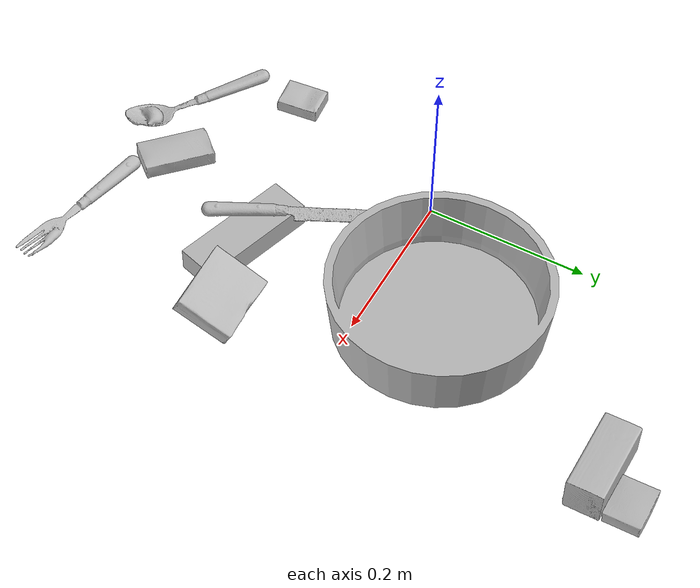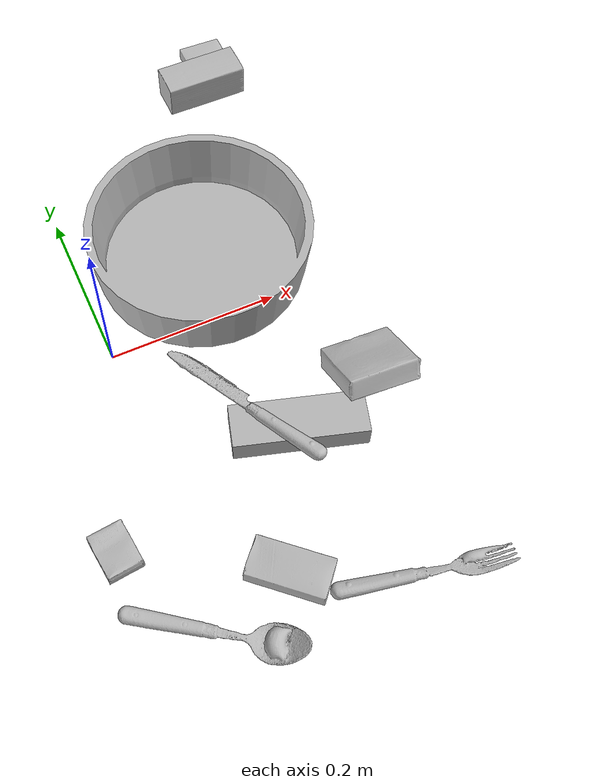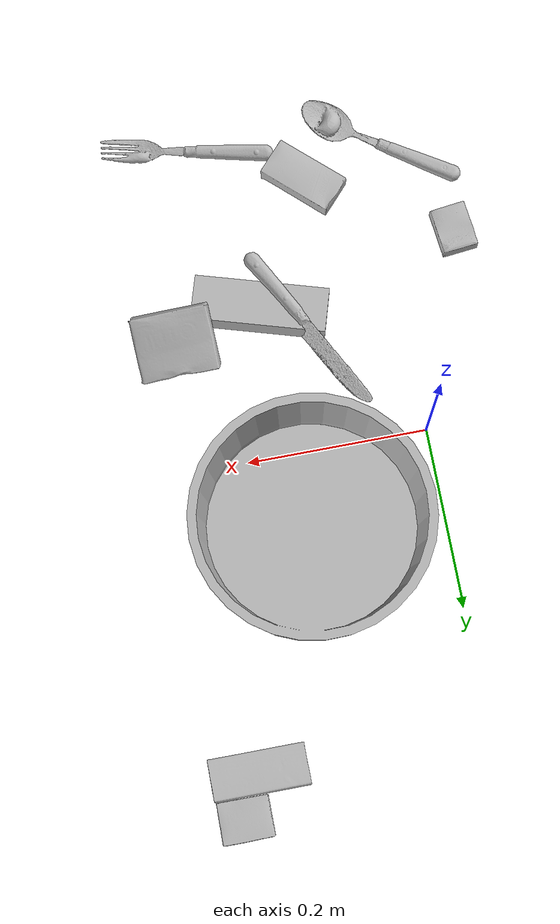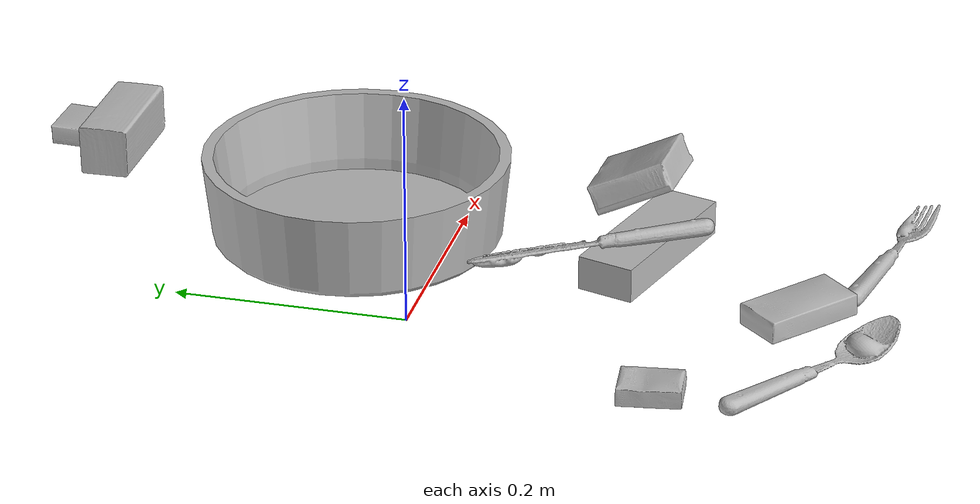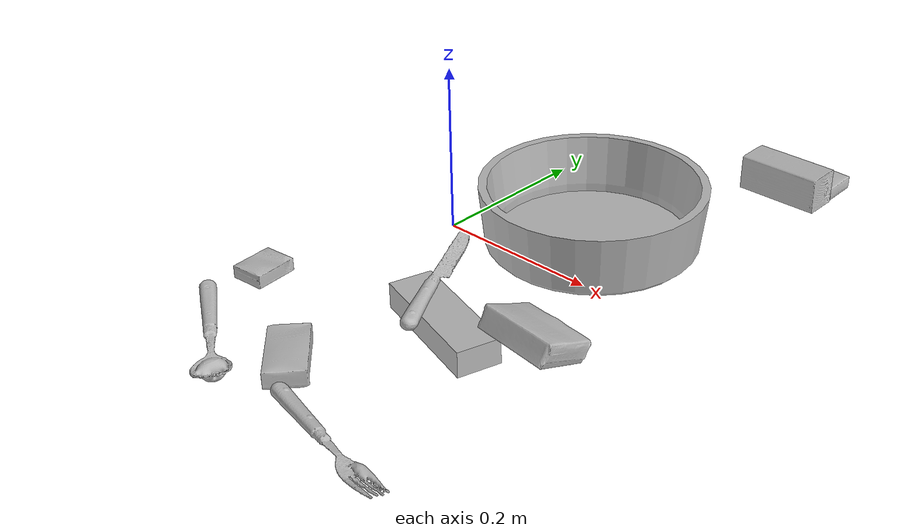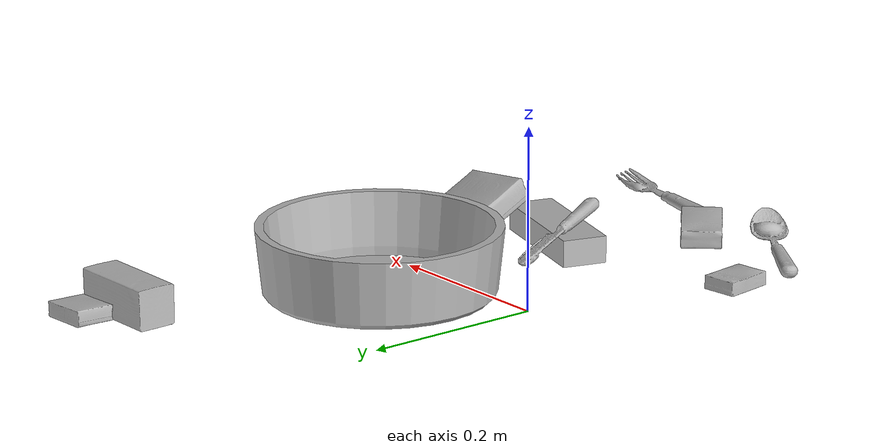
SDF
<sdf version="1.4">
  <world name="default">
    <light name="light1" type="point">
      <pose>0 0 1 0 0 0</pose>
      <diffuse>3 3 3 1</diffuse>
      <specular>3 3 3 1</specular>
    </light>
    <light name="light2" type="point">
      <pose>0 0.5 2 0 0 0</pose>
      <diffuse>1 1 1 1</diffuse>
      <specular>1 1 1 1</specular>
    </light>
    <light name="light3" type="point">
      <pose>0 0.5 2 0 0 0</pose>
      <diffuse>3 3 3 1</diffuse>
      <specular>3 3 3 1</specular>
    </light>
    <scene>
      <ambient>0.7 0.7 0.7</ambient>
    </scene>
    <model name="box11">
      <link name="link_box11">
        <collision name="default">
          <geometry>
            <mesh>
              <uri>model://jenga/collision_meshes/collision.obj</uri>
              <scale>1.0 1.0 1.0</scale>
            </mesh>
          </geometry>
          <surface>
            <friction>
              <ode>
                <mu>0.5</mu>
                <mu2>0.5</mu2>
              </ode>
            </friction>
          <contact>
        <ode>
            <max_vel>0</max_vel>
            <min_depth>0.0001</min_depth>
            <kp>1e8</kp>
        </ode>
    </contact></surface>
        </collision>
        <visual name="default">
          <geometry>
            <mesh>
              <uri>model://jenga/visual_meshes/visual.dae</uri>
              <scale>1.0 1.0 1.0</scale>
            </mesh>
          </geometry>
        </visual>
        <inertial>
          <mass>0.3186844289302826</mass>
          <pose>-2.502855807051674e-07 -0.0001025000965455547 -4.0923401684267446e-05 0.0 -7.34215461761844e-07 0.0</pose>
          <inertia>
            <ixx>8.818771e-05</ixx>
            <iyy>0.0005975576</iyy>
            <izz>0.00063794345</izz>
            <ixy>0</ixy>
            <ixz>0</ixz>
            <iyz>0</iyz>
          </inertia>
        </inertial>
      </link>
      <pose>0.15495502948760986 -0.16955332458019257 0.01500002108514309 1.7195857409980851e-06 -3.6814639824432155e-07 2.8511129976736354</pose>
    </model>
    <model name="box12">
      <link name="link_box12">
        <collision name="default">
          <geometry>
            <mesh>
              <uri>model://pudding_box/collision_meshes/collision.obj</uri>
              <scale>0.5 0.5 0.5</scale>
            </mesh>
          </geometry>
          <surface>
            <friction>
              <ode>
                <mu>0.5</mu>
                <mu2>0.5</mu2>
              </ode>
            </friction>
          <contact>
        <ode>
            <max_vel>0</max_vel>
            <min_depth>0.0001</min_depth>
            <kp>1e8</kp>
        </ode>
    </contact></surface>
        </collision>
        <visual name="default">
          <geometry>
            <mesh>
              <uri>model://pudding_box/visual_meshes/visual.dae</uri>
              <scale>0.5 0.5 0.5</scale>
            </mesh>
          </geometry>
        </visual>
        <inertial>
          <mass>0.030172348022460938</mass>
          <pose>0.00024474109522998333 0.000403394311433658 -0.00025944141088984907 0.005213102256408686 -0.006603800110353006 0.02007982142872578</pose>
          <inertia>
            <ixx>8.527073e-06</ixx>
            <iyy>5.7370744e-06</iyy>
            <izz>1.259245e-05</izz>
            <ixy>0</ixy>
            <ixz>0</ixz>
            <iyz>0</iyz>
          </inertia>
        </inertial>
      </link>
      <pose>0.2713174819946289 0.37757328152656555 0.00986290443688631 0.022349367583618104 -0.011391105754839176 1.5675943380673871</pose>
    </model>
    <model name="box13">
      <link name="link_box13">
        <collision name="default">
          <geometry>
            <mesh>
              <uri>model://sugar_box/collision_meshes/collision.obj</uri>
              <scale>0.5 0.5 0.5</scale>
            </mesh>
          </geometry>
          <surface>
            <friction>
              <ode>
                <mu>0.5</mu>
                <mu2>0.5</mu2>
              </ode>
            </friction>
          <contact>
        <ode>
            <max_vel>0</max_vel>
            <min_depth>0.0001</min_depth>
            <kp>1e8</kp>
        </ode>
    </contact></surface>
        </collision>
        <visual name="default">
          <geometry>
            <mesh>
              <uri>model://sugar_box/visual_meshes/visual.dae</uri>
              <scale>0.5 0.5 0.5</scale>
            </mesh>
          </geometry>
        </visual>
        <inertial>
          <mass>0.12330043315887451</mass>
          <pose>0.0005171863595023751 1.924554817378521e-05 -0.0001818240125430748 -0.0004046263878582698 0.0010506634058618082 0.0026153787888998363</pose>
          <inertia>
            <ixx>2.5683388e-05</ixx>
            <iyy>8.301401e-05</iyy>
            <izz>9.937768e-05</izz>
            <ixy>0</ixy>
            <ixz>0</ixz>
            <iyz>0</iyz>
          </inertia>
        </inertial>
      </link>
      <pose>0.07861808687448502 -0.3123015761375427 0.011399307288229465 0.0007755991514881838 -0.023433284092432043 -0.739834658714106</pose>
    </model>
    <model name="box21">
      <link name="link_box21">
        <collision name="default">
          <geometry>
            <mesh>
              <uri>model://wood_block/collision_meshes/collision.obj</uri>
              <scale>0.5 0.5 0.5</scale>
            </mesh>
          </geometry>
          <surface>
            <friction>
              <ode>
                <mu>0.5</mu>
                <mu2>0.5</mu2>
              </ode>
            </friction>
          <contact>
        <ode>
            <max_vel>0</max_vel>
            <min_depth>0.0001</min_depth>
            <kp>1e8</kp>
        </ode>
    </contact></surface>
        </collision>
        <visual name="default">
          <geometry>
            <mesh>
              <uri>model://wood_block/visual_meshes/visual.dae</uri>
              <scale>0.5 0.5 0.5</scale>
            </mesh>
          </geometry>
        </visual>
        <inertial>
          <mass>0.22575385868549347</mass>
          <pose>-2.9066577553749084e-06 -0.00028540470520965755 0.00013204291462898254 -0.05220771918194674 -0.005192696213783058 -0.006861377697513623</pose>
          <inertia>
            <ixx>7.552322e-05</ixx>
            <iyy>0.00023857782</iyy>
            <izz>0.00023768542</izz>
            <ixy>0</ixy>
            <ixz>0</ixz>
            <iyz>0</iyz>
          </inertia>
        </inertial>
      </link>
      <pose>0.2484368234872818 0.3328896164894104 0.022629264742136 -0.0052086147146732835 0.00571874948049108 0.003614587106335725</pose>
    </model>
    <model name="box22">
      <link name="link_box22">
        <collision name="default">
          <geometry>
            <mesh>
              <uri>model://cracker_box/collision_meshes/collision.obj</uri>
              <scale>0.25 0.25 0.25</scale>
            </mesh>
          </geometry>
          <surface>
            <friction>
              <ode>
                <mu>0.5</mu>
                <mu2>0.5</mu2>
              </ode>
            </friction>
          <contact>
        <ode>
            <max_vel>0</max_vel>
            <min_depth>0.0001</min_depth>
            <kp>1e8</kp>
        </ode>
    </contact></surface>
        </collision>
        <visual name="default">
          <geometry>
            <mesh>
              <uri>model://cracker_box/visual_meshes/visual.dae</uri>
              <scale>0.25 0.25 0.25</scale>
            </mesh>
          </geometry>
        </visual>
        <inertial>
          <mass>0.02141544781625271</mass>
          <pose>0.0002366038243053481 6.358561950037256e-05 -0.00042573839891701937 -0.000316207804917531 -0.011106489600095467 0.0025467954686493135</pose>
          <inertia>
            <ixx>3.4044588e-06</ixx>
            <iyy>5.62143e-06</iyy>
            <izz>8.022297e-06</izz>
            <ixy>0</ixy>
            <ixz>0</ixz>
            <iyz>0</iyz>
          </inertia>
        </inertial>
      </link>
      <pose>-0.07666365802288055 -0.22159886360168457 0.009096026420593262 -0.014050483484224852 -0.00501653458976862 -1.4625863332834077</pose>
    </model>
    <model name="box23">
      <link name="link_box23">
        <collision name="default">
          <geometry>
            <mesh>
              <uri>model://gelatin_box/collision_meshes/collision.obj</uri>
              <scale>1.0 1.0 1.0</scale>
            </mesh>
          </geometry>
          <surface>
            <friction>
              <ode>
                <mu>0.5</mu>
                <mu2>0.5</mu2>
              </ode>
            </friction>
          <contact>
        <ode>
            <max_vel>0</max_vel>
            <min_depth>0.0001</min_depth>
            <kp>1e8</kp>
        </ode>
    </contact></surface>
        </collision>
        <visual name="default">
          <geometry>
            <mesh>
              <uri>model://gelatin_box/visual_meshes/visual.dae</uri>
              <scale>1.0 1.0 1.0</scale>
            </mesh>
          </geometry>
        </visual>
        <inertial>
          <mass>0.2518538236618042</mass>
          <pose>0.00043196187471039593 0.00011156871914863586 -0.0003640321083366871 -0.001050372077086074 -0.00475581729336075 0.01644055760821351</pose>
          <inertia>
            <ixx>0.00017778824</ixx>
            <iyy>0.00012699323</iyy>
            <izz>0.00027063338</izz>
            <ixy>0</ixy>
            <ixz>0</ixz>
            <iyz>0</iyz>
          </inertia>
        </inertial>
      </link>
      <pose>0.2551765739917755 -0.14100779592990875 0.03199895843863487 0.11816107983857288 0.42890681657442403 1.6064448180241708</pose>
    </model>
    <model name="plate1">
      <link name="link_plate1">
        <collision name="default">
          <geometry>
            <mesh>
              <uri>model://pan_tefal/collision_meshes/collision.obj</uri>
              <scale>1.0 1.0 1.0</scale>
            </mesh>
          </geometry>
          <surface>
            <friction>
              <ode>
                <mu>0.5</mu>
                <mu2>0.5</mu2>
              </ode>
            </friction>
          <contact>
        <ode>
            <max_vel>0</max_vel>
            <min_depth>0.0001</min_depth>
            <kp>1e8</kp>
        </ode>
    </contact></surface>
        </collision>
        <visual name="default">
          <geometry>
            <mesh>
              <uri>model://pan_tefal/visual_meshes/visual.dae</uri>
              <scale>1.0 1.0 1.0</scale>
            </mesh>
          </geometry>
        </visual>
        <inertial>
          <mass>1.2783581018447876</mass>
          <pose>-0.0001800234749680385 3.279297015978955e-05 -0.008514934219419956 0.0008190282028794127 -0.0003301398069692291 -0.33185125702417473</pose>
          <inertia>
            <ixx>0.0088244425</ixx>
            <iyy>0.008881334</iyy>
            <izz>0.016244099</izz>
            <ixy>0</ixy>
            <ixz>0</ixz>
            <iyz>0</iyz>
          </inertia>
        </inertial>
      </link>
      <pose>0.1446439027786255 0.08319298923015594 0.03804999589920044 7.70707246416406e-09 -2.269642504973189e-08 -2.0752342394643244</pose>
    </model>
    <model name="silverware1">
      <link name="link_silverware1">
        <collision name="default">
          <geometry>
            <mesh>
              <uri>model://knife/collision_meshes/collision.obj</uri>
              <scale>1.0 1.0 1.0</scale>
            </mesh>
          </geometry>
          <surface>
            <friction>
              <ode>
                <mu>0.5</mu>
                <mu2>0.5</mu2>
              </ode>
            </friction>
          <contact>
        <ode>
            <max_vel>0</max_vel>
            <min_depth>0.0001</min_depth>
            <kp>1e8</kp>
        </ode>
    </contact></surface>
        </collision>
        <visual name="default">
          <geometry>
            <mesh>
              <uri>model://knife/visual_meshes/visual.dae</uri>
              <scale>1.0 1.0 1.0</scale>
            </mesh>
          </geometry>
        </visual>
        <inertial>
          <mass>0.028752580285072327</mass>
          <pose>-0.023785240948200226 0.0015275123296305537 5.0620223191799596e-05 0.07306965696526056 0.017248417457013686 -0.00740982691157592</pose>
          <inertia>
            <ixx>8.161146e-07</ixx>
            <iyy>0.000110462766</iyy>
            <izz>0.00011072555</izz>
            <ixy>0</ixy>
            <ixz>0</ixz>
            <iyz>0</iyz>
          </inertia>
        </inertial>
      </link>
      <pose>0.10938308387994766 -0.13009828329086304 0.03338217735290527 0.19949349142862915 0.036218720764705226 2.0601491775715255</pose>
    </model>
    <model name="silverware2">
      <link name="link_silverware2">
        <collision name="default">
          <geometry>
            <mesh>
              <uri>model://spoon/collision_meshes/collision.obj</uri>
              <scale>1.0 1.0 1.0</scale>
            </mesh>
          </geometry>
          <surface>
            <friction>
              <ode>
                <mu>0.5</mu>
                <mu2>0.5</mu2>
              </ode>
            </friction>
          <contact>
        <ode>
            <max_vel>0</max_vel>
            <min_depth>0.0001</min_depth>
            <kp>1e8</kp>
        </ode>
    </contact></surface>
        </collision>
        <visual name="default">
          <geometry>
            <mesh>
              <uri>model://spoon/visual_meshes/visual.dae</uri>
              <scale>1.0 1.0 1.0</scale>
            </mesh>
          </geometry>
        </visual>
        <inertial>
          <mass>0.03275385871529579</mass>
          <pose>-0.005526320543140173 -0.0016034176805987954 -0.0007271653157658875 0.03521620701241808 -0.03906583474323888 0.006150609342160928</pose>
          <inertia>
            <ixx>1.8218228e-06</ixx>
            <iyy>0.00012462735</iyy>
            <izz>0.0001255258</izz>
            <ixy>0</ixy>
            <ixz>0</ixz>
            <iyz>0</iyz>
          </inertia>
        </inertial>
      </link>
      <pose>-0.014038564637303352 -0.337240993976593 0.008385264314711094 0.006729160073511241 0.026893001221965675 -0.6068015864413104</pose>
    </model>
    <model name="silverware3">
      <link name="link_silverware3">
        <collision name="default">
          <geometry>
            <mesh>
              <uri>model://fork/collision_meshes/collision.obj</uri>
              <scale>1.0 1.0 1.0</scale>
            </mesh>
          </geometry>
          <surface>
            <friction>
              <ode>
                <mu>0.5</mu>
                <mu2>0.5</mu2>
              </ode>
            </friction>
          <contact>
        <ode>
            <max_vel>0</max_vel>
            <min_depth>0.0001</min_depth>
            <kp>1e8</kp>
        </ode>
    </contact></surface>
        </collision>
        <visual name="default">
          <geometry>
            <mesh>
              <uri>model://fork/visual_meshes/visual.dae</uri>
              <scale>1.0 1.0 1.0</scale>
            </mesh>
          </geometry>
        </visual>
        <inertial>
          <mass>0.015051598660647869</mass>
          <pose>-0.029570037499070168 0.00046588244731538 0.0003218861238565296 -0.013550825752082697 -0.010977832944741694 0.014453903400543814</pose>
          <inertia>
            <ixx>5.2764364e-07</ixx>
            <iyy>3.9295395e-05</iyy>
            <izz>3.953141e-05</izz>
            <ixy>0</ixy>
            <ixz>0</ixz>
            <iyz>0</iyz>
          </inertia>
        </inertial>
      </link>
      <pose>0.2028525173664093 -0.3703301250934601 0.005683815106749535 -0.17305179709154483 0.026154023135705706 -0.2109142052578148</pose>
    </model>
  <physics type="ode">
      <max_contacts>50</max_contacts>
      <ode>
        <solver>
          <type>quick</type>
          <iters>75</iters>
        </solver>
        <constraints>
          <contact_max_correcting_vel>0</contact_max_correcting_vel>
          <contact_surface_layer>0</contact_surface_layer>
        </constraints>
      </ode>
    </physics></world>
</sdf>
